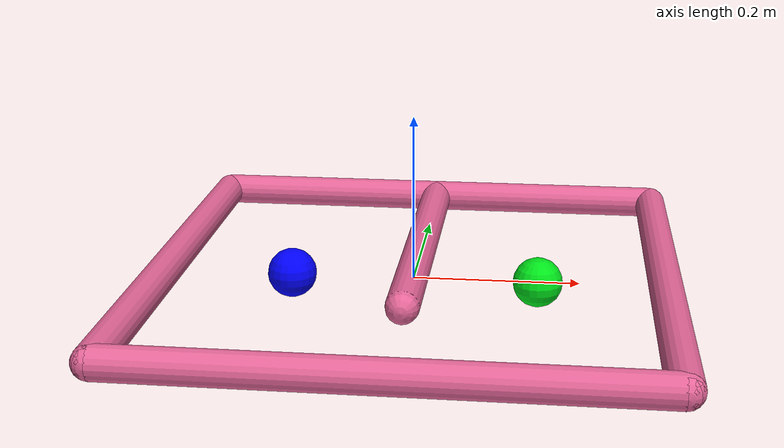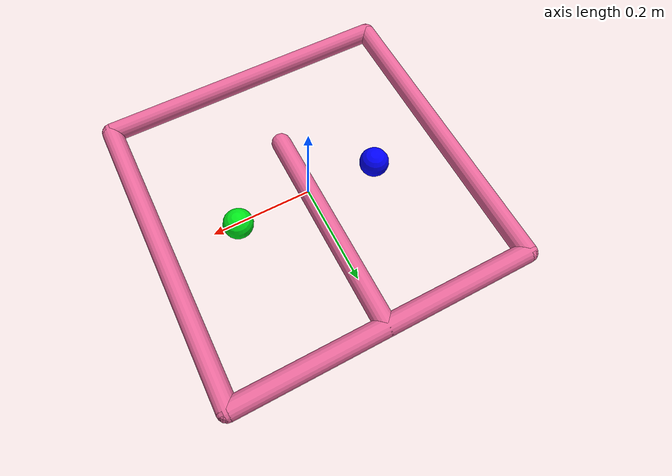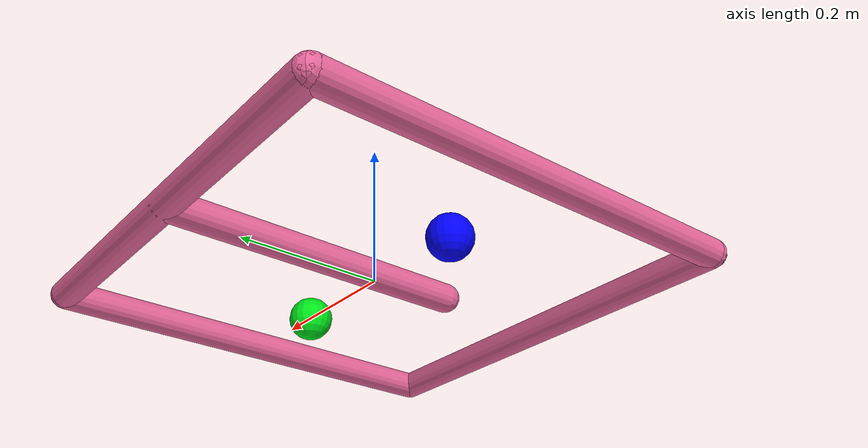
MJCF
<mujoco model="twod_point">
    <compiler inertiafromgeom="true" angle="radian" coordinate="local" />
    <option timestep="0.01" gravity="0 0 0" iterations="20" integrator="Euler" />
    <default>
        <joint limited="false" damping="1" />
        <geom contype="2" conaffinity="1" condim="1" friction=".5 .1 .1" density="1000" margin="0.002" />
    </default>

  <asset>
    <texture name="skybox" type="skybox" builtin="flat" rgb1="1 1 1" rgb2="1 1 1" width="800" height="800"/>
  </asset>

    <worldbody>
        <!-- Pointmass -->
        <body name="particle" pos="-0.15 0.0 0">
            <geom name="particle_geom" type="sphere" size="0.03" rgba="0.0 0.0 1.0 1" contype="1"/>
            <site name="particle_site" pos="0 0 0" size="0.01" />
            <joint name="ball_x" type="slide" pos="0 0 0" axis="1 0 0" />
            <joint name="ball_y" type="slide" pos="0 0 0" axis="0 1 0" />
        </body>

        <body name="target" pos="0.15 0.0 0">
            <geom conaffinity="2" name="target_geom" type="sphere" size="0.03" rgba="0 0.9 0.1 1"/>
        </body>

        <!-- Arena -->
        <geom conaffinity="1" fromto="-.3 -.3 .01 .3 -.3 .01" name="sideS" rgba="0.9 0.4 0.6 1" size=".02" type="capsule"/>
		<geom conaffinity="1" fromto=" .3 -.3 .01 .3  .3 .01" name="sideE" rgba="0.9 0.4 0.6 1" size=".02" type="capsule"/>
		<geom conaffinity="1" fromto="-.3  .3 .01 .3  .3 .01" name="sideN" rgba="0.9 0.4 0.6 1" size=".02" type="capsule"/>
		<geom conaffinity="1" fromto="-.3 -.3 .01 -.3 .3 .01" name="sideW" rgba="0.9 0.4 0.6 1" size=".02" type="capsule"/>

        <geom conaffinity="1" fromto="0 .3 .01 0 -.12 .01" name="wall" rgba="0.9 0.4 0.6 1" size=".02" type="capsule"/>
    </worldbody>

    <actuator>
        <motor joint="ball_x" ctrlrange="-5.0 5.0" ctrllimited="true"/>
        <motor joint="ball_y" ctrlrange="-5.0 5.0" ctrllimited="true"/>
    </actuator>
</mujoco>
